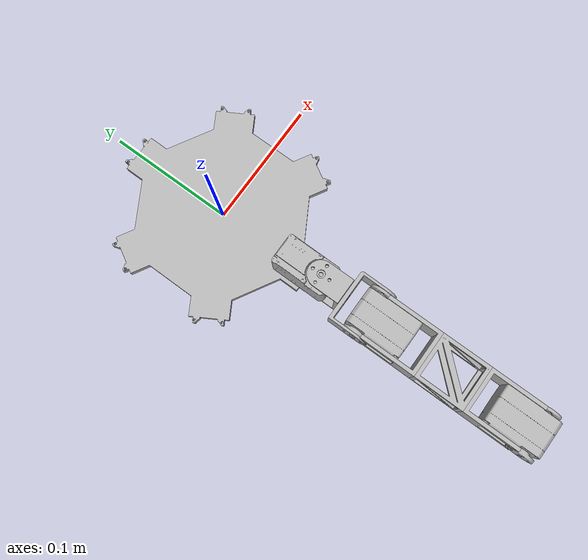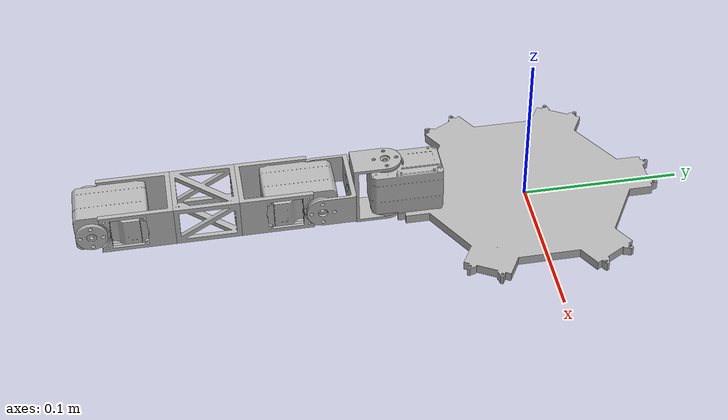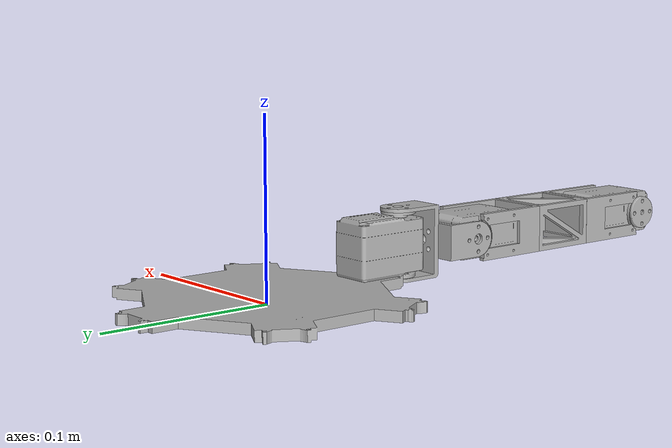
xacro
<?xml version="1.0" ?>
<robot name="Hexapod_urdf_transfer" xmlns:xacro="http://www.ros.org/wiki/xacro">

<xacro:include filename="$(find Hexapod_urdf_transfer_description)/urdf/materials.xacro" />
<xacro:include filename="$(find Hexapod_urdf_transfer_description)/urdf/Hexapod_urdf_transfer.trans" />
<xacro:include filename="$(find Hexapod_urdf_transfer_description)/urdf/Hexapod_urdf_transfer.gazebo" />
<link name="base_link">
  <inertial>
    <origin xyz="1.685950638924157e-07 2.237629093563546e-05 0.003000587051881271" rpy="0 0 0"/>
    <mass value="0.7642708336375105"/>
    <inertia ixx="0.001029" iyy="0.00103" izz="0.002054" ixy="0.0" iyz="0.0" ixz="-0.0"/>
  </inertial>
  <visual>
    <origin xyz="0 0 0" rpy="0 0 0"/>
    <geometry>
      <mesh filename="package://Hexapod_urdf_transfer_description/meshes/base_link.stl" scale="0.001 0.001 0.001"/>
    </geometry>
    <material name="silver"/>
  </visual>
  <collision>
    <origin xyz="0 0 0" rpy="0 0 0"/>
    <geometry>
      <mesh filename="package://Hexapod_urdf_transfer_description/meshes/base_link.stl" scale="0.001 0.001 0.001"/>
    </geometry>
  </collision>
</link>

<link name="Servo_Body_v2__2__1">
  <inertial>
    <origin xyz="0.010251565506738435 -0.020191302124410983 0.016681889716058836" rpy="0 0 0"/>
    <mass value="0.056857679343396465"/>
    <inertia ixx="1.4e-05" iyy="7e-06" izz="1.2e-05" ixy="-0.0" iyz="-0.0" ixz="0.0"/>
  </inertial>
  <visual>
    <origin xyz="0.010267 0.057788 -0.006" rpy="0 0 0"/>
    <geometry>
      <mesh filename="package://Hexapod_urdf_transfer_description/meshes/Servo_Body_v2__2__1.stl" scale="0.001 0.001 0.001"/>
    </geometry>
    <material name="silver"/>
  </visual>
  <collision>
    <origin xyz="0.010267 0.057788 -0.006" rpy="0 0 0"/>
    <geometry>
      <mesh filename="package://Hexapod_urdf_transfer_description/meshes/Servo_Body_v2__2__1.stl" scale="0.001 0.001 0.001"/>
    </geometry>
  </collision>
</link>

<link name="Right_Horn_v3_1">
  <inertial>
    <origin xyz="-1.0943037173784565e-07 4.062781223806988e-07 -0.00010250231462573256" rpy="0 0 0"/>
    <mass value="0.0059458144206551485"/>
    <inertia ixx="0.0" iyy="0.0" izz="0.0" ixy="0.0" iyz="-0.0" ixz="0.0"/>
  </inertial>
  <visual>
    <origin xyz="1.7e-05 0.090538 -0.0397" rpy="0 0 0"/>
    <geometry>
      <mesh filename="package://Hexapod_urdf_transfer_description/meshes/Right_Horn_v3_1.stl" scale="0.001 0.001 0.001"/>
    </geometry>
    <material name="silver"/>
  </visual>
  <collision>
    <origin xyz="1.7e-05 0.090538 -0.0397" rpy="0 0 0"/>
    <geometry>
      <mesh filename="package://Hexapod_urdf_transfer_description/meshes/Right_Horn_v3_1.stl" scale="0.001 0.001 0.001"/>
    </geometry>
  </collision>
</link>

<link name="Left_Horn_v4_1">
  <inertial>
    <origin xyz="-1.1052608136953517e-07 4.0627812111782013e-07 0.0009163917674599293" rpy="0 0 0"/>
    <mass value="0.004443481253791211"/>
    <inertia ixx="0.0" iyy="0.0" izz="0.0" ixy="-0.0" iyz="0.0" ixz="-0.0"/>
  </inertial>
  <visual>
    <origin xyz="1.7e-05 0.090538 -0.00365" rpy="0 0 0"/>
    <geometry>
      <mesh filename="package://Hexapod_urdf_transfer_description/meshes/Left_Horn_v4_1.stl" scale="0.001 0.001 0.001"/>
    </geometry>
    <material name="silver"/>
  </visual>
  <collision>
    <origin xyz="1.7e-05 0.090538 -0.00365" rpy="0 0 0"/>
    <geometry>
      <mesh filename="package://Hexapod_urdf_transfer_description/meshes/Left_Horn_v4_1.stl" scale="0.001 0.001 0.001"/>
    </geometry>
  </collision>
</link>

<link name="Bracket_v19_1">
  <inertial>
    <origin xyz="-8.028746492997508e-07 -0.01314078100810713 0.018580054077971173" rpy="0 0 0"/>
    <mass value="0.032617193022395415"/>
    <inertia ixx="1.1e-05" iyy="9e-06" izz="4e-06" ixy="-0.0" iyz="0.0" ixz="-0.0"/>
  </inertial>
  <visual>
    <origin xyz="1.7e-05 0.090538 -0.00335" rpy="0 0 0"/>
    <geometry>
      <mesh filename="package://Hexapod_urdf_transfer_description/meshes/Bracket_v19_1.stl" scale="0.001 0.001 0.001"/>
    </geometry>
    <material name="silver"/>
  </visual>
  <collision>
    <origin xyz="1.7e-05 0.090538 -0.00335" rpy="0 0 0"/>
    <geometry>
      <mesh filename="package://Hexapod_urdf_transfer_description/meshes/Bracket_v19_1.stl" scale="0.001 0.001 0.001"/>
    </geometry>
  </collision>
</link>

<link name="Bracket_v19__1__1">
  <inertial>
    <origin xyz="-1.1545609477965347e-05 -0.007858406435299337 1.731134314260016e-05" rpy="0 0 0"/>
    <mass value="0.032617193022395415"/>
    <inertia ixx="4e-06" iyy="9e-06" izz="1.1e-05" ixy="0.0" iyz="-0.0" ixz="-0.0"/>
  </inertial>
  <visual>
    <origin xyz="0.0 0.111538 -0.021919" rpy="0 0 0"/>
    <geometry>
      <mesh filename="package://Hexapod_urdf_transfer_description/meshes/Bracket_v19__1__1.stl" scale="0.001 0.001 0.001"/>
    </geometry>
    <material name="silver"/>
  </visual>
  <collision>
    <origin xyz="0.0 0.111538 -0.021919" rpy="0 0 0"/>
    <geometry>
      <mesh filename="package://Hexapod_urdf_transfer_description/meshes/Bracket_v19__1__1.stl" scale="0.001 0.001 0.001"/>
    </geometry>
  </collision>
</link>

<link name="Left_Horn_v4__1__1">
  <inertial>
    <origin xyz="-0.0012168832989674465 4.062784720593182e-07 -3.810054252026407e-07" rpy="0 0 0"/>
    <mass value="0.004443481253791211"/>
    <inertia ixx="0.0" iyy="0.0" izz="0.0" ixy="0.0" iyz="-0.0" ixz="-0.0"/>
  </inertial>
  <visual>
    <origin xyz="-0.018569 0.132538 -0.021936" rpy="0 0 0"/>
    <geometry>
      <mesh filename="package://Hexapod_urdf_transfer_description/meshes/Left_Horn_v4__1__1.stl" scale="0.001 0.001 0.001"/>
    </geometry>
    <material name="silver"/>
  </visual>
  <collision>
    <origin xyz="-0.018569 0.132538 -0.021936" rpy="0 0 0"/>
    <geometry>
      <mesh filename="package://Hexapod_urdf_transfer_description/meshes/Left_Horn_v4__1__1.stl" scale="0.001 0.001 0.001"/>
    </geometry>
  </collision>
</link>

<link name="Right_Horn_v3__1__1">
  <inertial>
    <origin xyz="0.0014020107831182321 4.073740061394382e-07 -3.810052512515094e-07" rpy="0 0 0"/>
    <mass value="0.0059458144206551485"/>
    <inertia ixx="0.0" iyy="0.0" izz="0.0" ixy="-0.0" iyz="-0.0" ixz="-0.0"/>
  </inertial>
  <visual>
    <origin xyz="0.018431 0.132538 -0.021936" rpy="0 0 0"/>
    <geometry>
      <mesh filename="package://Hexapod_urdf_transfer_description/meshes/Right_Horn_v3__1__1.stl" scale="0.001 0.001 0.001"/>
    </geometry>
    <material name="silver"/>
  </visual>
  <collision>
    <origin xyz="0.018431 0.132538 -0.021936" rpy="0 0 0"/>
    <geometry>
      <mesh filename="package://Hexapod_urdf_transfer_description/meshes/Right_Horn_v3__1__1.stl" scale="0.001 0.001 0.001"/>
    </geometry>
  </collision>
</link>

<link name="Servo_Body_v2__1__1">
  <inertial>
    <origin xyz="-0.019282381247566448 -0.012557885318995793 -2.0570382449278113e-06" rpy="0 0 0"/>
    <mass value="0.056857679343396465"/>
    <inertia ixx="1.2e-05" iyy="7e-06" izz="1.4e-05" ixy="-0.0" iyz="-0.0" ixz="0.0"/>
  </inertial>
  <visual>
    <origin xyz="-0.018269 0.132538 -0.021936" rpy="0 0 0"/>
    <geometry>
      <mesh filename="package://Hexapod_urdf_transfer_description/meshes/Servo_Body_v2__1__1.stl" scale="0.001 0.001 0.001"/>
    </geometry>
    <material name="silver"/>
  </visual>
  <collision>
    <origin xyz="-0.018269 0.132538 -0.021936" rpy="0 0 0"/>
    <geometry>
      <mesh filename="package://Hexapod_urdf_transfer_description/meshes/Servo_Body_v2__1__1.stl" scale="0.001 0.001 0.001"/>
    </geometry>
  </collision>
</link>

<link name="Rear_Bracket_v4_1">
  <inertial>
    <origin xyz="0.014212065535117674 -0.009599778812158483 0.01024791565709395" rpy="0 0 0"/>
    <mass value="0.053151941776708324"/>
    <inertia ixx="1.2e-05" iyy="1.5e-05" izz="2e-05" ixy="1e-06" iyz="0.0" ixz="0.0"/>
  </inertial>
  <visual>
    <origin xyz="0.016331 0.161538 -0.011686" rpy="0 0 0"/>
    <geometry>
      <mesh filename="package://Hexapod_urdf_transfer_description/meshes/Rear_Bracket_v4_1.stl" scale="0.001 0.001 0.001"/>
    </geometry>
    <material name="silver"/>
  </visual>
  <collision>
    <origin xyz="0.016331 0.161538 -0.011686" rpy="0 0 0"/>
    <geometry>
      <mesh filename="package://Hexapod_urdf_transfer_description/meshes/Rear_Bracket_v4_1.stl" scale="0.001 0.001 0.001"/>
    </geometry>
  </collision>
</link>

<link name="Upper_Leg_v7_1">
  <inertial>
    <origin xyz="-0.1661141297446751 -0.04342259372170318 0.021935618994575044" rpy="0 0 0"/>
    <mass value="0.03961380887673026"/>
    <inertia ixx="1.2e-05" iyy="1.2e-05" izz="1.5e-05" ixy="-1e-06" iyz="-0.0" ixz="0.0"/>
  </inertial>
  <visual>
    <origin xyz="-0.165206 0.159115 0.0" rpy="0 0 0"/>
    <geometry>
      <mesh filename="package://Hexapod_urdf_transfer_description/meshes/Upper_Leg_v7_1.stl" scale="0.001 0.001 0.001"/>
    </geometry>
    <material name="silver"/>
  </visual>
  <collision>
    <origin xyz="-0.165206 0.159115 0.0" rpy="0 0 0"/>
    <geometry>
      <mesh filename="package://Hexapod_urdf_transfer_description/meshes/Upper_Leg_v7_1.stl" scale="0.001 0.001 0.001"/>
    </geometry>
  </collision>
</link>

<link name="Rear_Bracket_v4__1__1">
  <inertial>
    <origin xyz="0.20490606553511737 -0.07482240863124792 -0.03378367766794385" rpy="0 0 0"/>
    <mass value="0.053151941776708324"/>
    <inertia ixx="1.2e-05" iyy="1.5e-05" izz="2e-05" ixy="-1e-06" iyz="0.0" ixz="-0.0"/>
  </inertial>
  <visual>
    <origin xyz="0.207025 0.159115 -0.055721" rpy="0 0 0"/>
    <geometry>
      <mesh filename="package://Hexapod_urdf_transfer_description/meshes/Rear_Bracket_v4__1__1.stl" scale="0.001 0.001 0.001"/>
    </geometry>
    <material name="silver"/>
  </visual>
  <collision>
    <origin xyz="0.207025 0.159115 -0.055721" rpy="0 0 0"/>
    <geometry>
      <mesh filename="package://Hexapod_urdf_transfer_description/meshes/Rear_Bracket_v4__1__1.stl" scale="0.001 0.001 0.001"/>
    </geometry>
  </collision>
</link>

<link name="Servo_Body_v2_1">
  <inertial>
    <origin xyz="0.015317618752432994 -0.016441302124410667 -0.010248704972604977" rpy="0 0 0"/>
    <mass value="0.056857679343396465"/>
    <inertia ixx="1.2e-05" iyy="7e-06" izz="1.4e-05" ixy="0.0" iyz="-0.0" ixz="-0.0"/>
  </inertial>
  <visual>
    <origin xyz="0.016331 0.243538 -0.032186" rpy="0 0 0"/>
    <geometry>
      <mesh filename="package://Hexapod_urdf_transfer_description/meshes/Servo_Body_v2_1.stl" scale="0.001 0.001 0.001"/>
    </geometry>
    <material name="silver"/>
  </visual>
  <collision>
    <origin xyz="0.016331 0.243538 -0.032186" rpy="0 0 0"/>
    <geometry>
      <mesh filename="package://Hexapod_urdf_transfer_description/meshes/Servo_Body_v2_1.stl" scale="0.001 0.001 0.001"/>
    </geometry>
  </collision>
</link>

<link name="Right_Horn_v3__2__1">
  <inertial>
    <origin xyz="0.00010201078311747672 4.0737400630597165e-07 -3.810052502141448e-07" rpy="0 0 0"/>
    <mass value="0.0059458144206551485"/>
    <inertia ixx="0.0" iyy="0.0" izz="0.0" ixy="-0.0" iyz="-0.0" ixz="-0.0"/>
  </inertial>
  <visual>
    <origin xyz="0.018031 0.272538 -0.021936" rpy="0 0 0"/>
    <geometry>
      <mesh filename="package://Hexapod_urdf_transfer_description/meshes/Right_Horn_v3__2__1.stl" scale="0.001 0.001 0.001"/>
    </geometry>
    <material name="silver"/>
  </visual>
  <collision>
    <origin xyz="0.018031 0.272538 -0.021936" rpy="0 0 0"/>
    <geometry>
      <mesh filename="package://Hexapod_urdf_transfer_description/meshes/Right_Horn_v3__2__1.stl" scale="0.001 0.001 0.001"/>
    </geometry>
  </collision>
</link>

<link name="Left_Horn_v4__2__1">
  <inertial>
    <origin xyz="-0.0009168832989681422 4.062782968938805e-07 -3.810055999413364e-07" rpy="0 0 0"/>
    <mass value="0.004443481253791211"/>
    <inertia ixx="0.0" iyy="0.0" izz="0.0" ixy="0.0" iyz="0.0" ixz="-0.0"/>
  </inertial>
  <visual>
    <origin xyz="-0.018019 0.272538 -0.021936" rpy="0 0 0"/>
    <geometry>
      <mesh filename="package://Hexapod_urdf_transfer_description/meshes/Left_Horn_v4__2__1.stl" scale="0.001 0.001 0.001"/>
    </geometry>
    <material name="silver"/>
  </visual>
  <collision>
    <origin xyz="-0.018019 0.272538 -0.021936" rpy="0 0 0"/>
    <geometry>
      <mesh filename="package://Hexapod_urdf_transfer_description/meshes/Left_Horn_v4__2__1.stl" scale="0.001 0.001 0.001"/>
    </geometry>
  </collision>
</link>

<joint name="Rigid 17" type="fixed">
  <origin xyz="-0.010267 -0.057788 0.006" rpy="0 0 0"/>
  <parent link="base_link"/>
  <child link="Servo_Body_v2__2__1"/>
</joint>

<joint name="Revolute 18" type="revolute">
  <origin xyz="0.01025 -0.03275 0.0337" rpy="0 0 0"/>
  <parent link="Servo_Body_v2__2__1"/>
  <child link="Right_Horn_v3_1"/>
  <axis xyz="0.0 0.0 -1.0"/>
  <limit upper="1.570796" lower="-1.570796" effort="100" velocity="100"/>
</joint>

<joint name="Revolute 19" type="revolute">
  <origin xyz="0.01025 -0.03275 -0.00235" rpy="0 0 0"/>
  <parent link="Servo_Body_v2__2__1"/>
  <child link="Left_Horn_v4_1"/>
  <axis xyz="-0.0 -0.0 1.0"/>
  <limit upper="0.0" lower="-3.141593" effort="100" velocity="100"/>
</joint>

<joint name="Rigid 20" type="fixed">
  <origin xyz="0.0 0.0 -0.0003" rpy="0 0 0"/>
  <parent link="Left_Horn_v4_1"/>
  <child link="Bracket_v19_1"/>
</joint>

<joint name="Rigid 21" type="fixed">
  <origin xyz="1.7e-05 -0.021 0.018569" rpy="0 0 0"/>
  <parent link="Bracket_v19_1"/>
  <child link="Bracket_v19__1__1"/>
</joint>

<joint name="Rigid 22" type="fixed">
  <origin xyz="0.018569 -0.021 1.7e-05" rpy="0 0 0"/>
  <parent link="Bracket_v19__1__1"/>
  <child link="Left_Horn_v4__1__1"/>
</joint>

<joint name="Rigid 23" type="fixed">
  <origin xyz="-0.018431 -0.021 1.7e-05" rpy="0 0 0"/>
  <parent link="Bracket_v19__1__1"/>
  <child link="Right_Horn_v3__1__1"/>
</joint>

<joint name="Revolute 24" type="revolute">
  <origin xyz="-0.0003 0.0 0.0" rpy="0 0 0"/>
  <parent link="Left_Horn_v4__1__1"/>
  <child link="Servo_Body_v2__1__1"/>
  <axis xyz="1.0 -0.0 0.0"/>
  <limit upper="1.570796" lower="-1.570796" effort="100" velocity="100"/>
</joint>

<joint name="Rigid 25" type="fixed">
  <origin xyz="-0.0346 -0.029 -0.01025" rpy="0 0 0"/>
  <parent link="Servo_Body_v2__1__1"/>
  <child link="Rear_Bracket_v4_1"/>
</joint>

<joint name="Rigid 26" type="fixed">
  <origin xyz="0.181537 0.002423 -0.011686" rpy="0 0 0"/>
  <parent link="Rear_Bracket_v4_1"/>
  <child link="Upper_Leg_v7_1"/>
</joint>

<joint name="Rigid 27" type="fixed">
  <origin xyz="-0.372231 0.0 0.055721" rpy="0 0 0"/>
  <parent link="Upper_Leg_v7_1"/>
  <child link="Rear_Bracket_v4__1__1"/>
</joint>

<joint name="Rigid 28" type="fixed">
  <origin xyz="0.190694 -0.084423 -0.023535" rpy="0 0 0"/>
  <parent link="Rear_Bracket_v4__1__1"/>
  <child link="Servo_Body_v2_1"/>
</joint>

<joint name="Revolute 29" type="revolute">
  <origin xyz="-0.0017 -0.029 -0.01025" rpy="0 0 0"/>
  <parent link="Servo_Body_v2_1"/>
  <child link="Right_Horn_v3__2__1"/>
  <axis xyz="1.0 -0.0 0.0"/>
  <limit upper="1.570796" lower="-1.570796" effort="100" velocity="100"/>
</joint>

<joint name="Revolute 31" type="revolute">
  <origin xyz="0.03435 -0.029 -0.01025" rpy="0 0 0"/>
  <parent link="Servo_Body_v2_1"/>
  <child link="Left_Horn_v4__2__1"/>
  <axis xyz="-1.0 0.0 -0.0"/>
  <limit upper="4.712389" lower="1.570796" effort="100" velocity="100"/>
</joint>

</robot>

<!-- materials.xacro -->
<robot name="Hexapod_urdf_transfer" xmlns:xacro="http://www.ros.org/wiki/xacro" >

<material name="silver">
  <color rgba="0.700 0.700 0.700 1.000"/>
</material>

</robot>

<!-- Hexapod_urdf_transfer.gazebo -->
<robot name="Hexapod_urdf_transfer" xmlns:xacro="http://www.ros.org/wiki/xacro" >

<xacro:property name="body_color" value="Gazebo/Silver" />

<gazebo>
  <plugin name="control" filename="libgazebo_ros_control.so"/>
</gazebo>
<gazebo reference="base_link">
  <material>${body_color}</material>
  <mu1>0.2</mu1>
  <mu2>0.2</mu2>
  <selfCollide>true</selfCollide>
  <gravity>true</gravity>
</gazebo>

<gazebo reference="Servo_Body_v2__2__1">
  <material>${body_color}</material>
  <mu1>0.2</mu1>
  <mu2>0.2</mu2>
  <selfCollide>true</selfCollide>
</gazebo>

<gazebo reference="Right_Horn_v3_1">
  <material>${body_color}</material>
  <mu1>0.2</mu1>
  <mu2>0.2</mu2>
  <selfCollide>true</selfCollide>
</gazebo>

<gazebo reference="Left_Horn_v4_1">
  <material>${body_color}</material>
  <mu1>0.2</mu1>
  <mu2>0.2</mu2>
  <selfCollide>true</selfCollide>
</gazebo>

<gazebo reference="Bracket_v19_1">
  <material>${body_color}</material>
  <mu1>0.2</mu1>
  <mu2>0.2</mu2>
  <selfCollide>true</selfCollide>
</gazebo>

<gazebo reference="Bracket_v19__1__1">
  <material>${body_color}</material>
  <mu1>0.2</mu1>
  <mu2>0.2</mu2>
  <selfCollide>true</selfCollide>
</gazebo>

<gazebo reference="Left_Horn_v4__1__1">
  <material>${body_color}</material>
  <mu1>0.2</mu1>
  <mu2>0.2</mu2>
  <selfCollide>true</selfCollide>
</gazebo>

<gazebo reference="Right_Horn_v3__1__1">
  <material>${body_color}</material>
  <mu1>0.2</mu1>
  <mu2>0.2</mu2>
  <selfCollide>true</selfCollide>
</gazebo>

<gazebo reference="Servo_Body_v2__1__1">
  <material>${body_color}</material>
  <mu1>0.2</mu1>
  <mu2>0.2</mu2>
  <selfCollide>true</selfCollide>
</gazebo>

<gazebo reference="Rear_Bracket_v4_1">
  <material>${body_color}</material>
  <mu1>0.2</mu1>
  <mu2>0.2</mu2>
  <selfCollide>true</selfCollide>
</gazebo>

<gazebo reference="Upper_Leg_v7_1">
  <material>${body_color}</material>
  <mu1>0.2</mu1>
  <mu2>0.2</mu2>
  <selfCollide>true</selfCollide>
</gazebo>

<gazebo reference="Rear_Bracket_v4__1__1">
  <material>${body_color}</material>
  <mu1>0.2</mu1>
  <mu2>0.2</mu2>
  <selfCollide>true</selfCollide>
</gazebo>

<gazebo reference="Servo_Body_v2_1">
  <material>${body_color}</material>
  <mu1>0.2</mu1>
  <mu2>0.2</mu2>
  <selfCollide>true</selfCollide>
</gazebo>

<gazebo reference="Right_Horn_v3__2__1">
  <material>${body_color}</material>
  <mu1>0.2</mu1>
  <mu2>0.2</mu2>
  <selfCollide>true</selfCollide>
</gazebo>

<gazebo reference="Left_Horn_v4__2__1">
  <material>${body_color}</material>
  <mu1>0.2</mu1>
  <mu2>0.2</mu2>
  <selfCollide>true</selfCollide>
</gazebo>

</robot>
